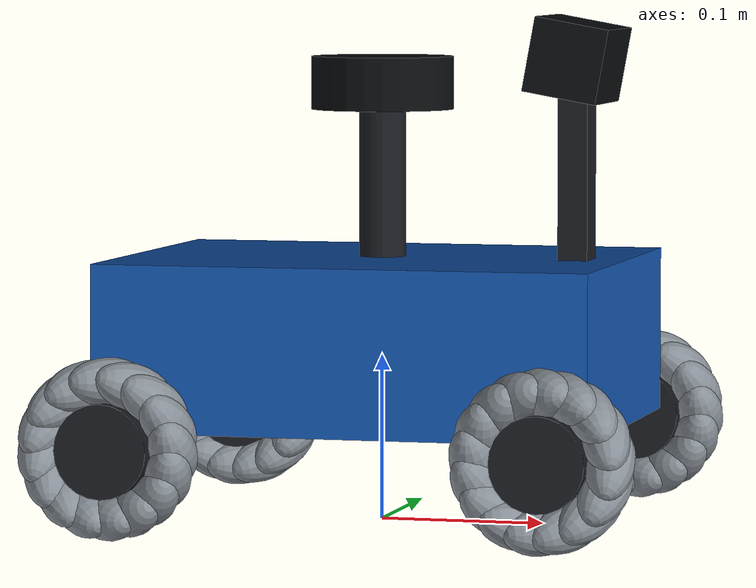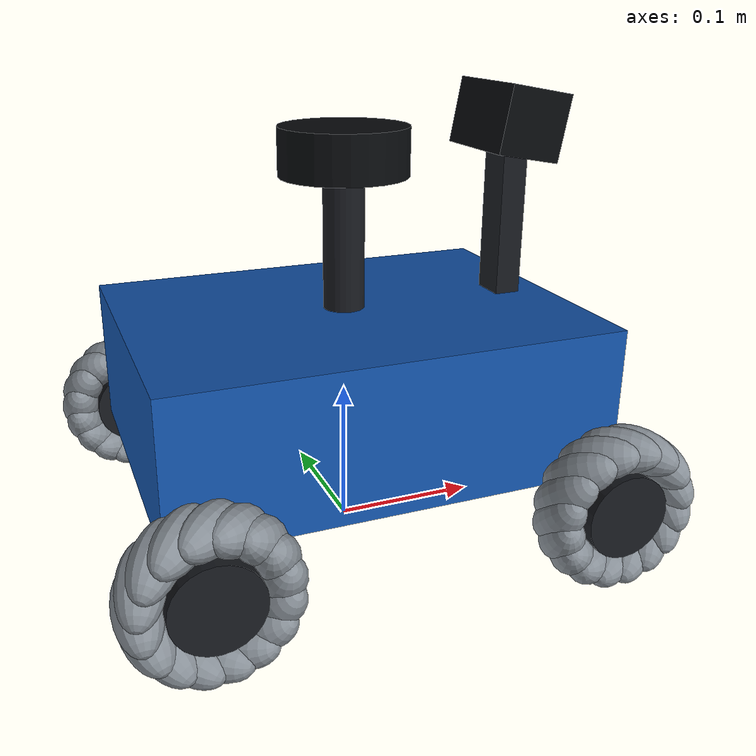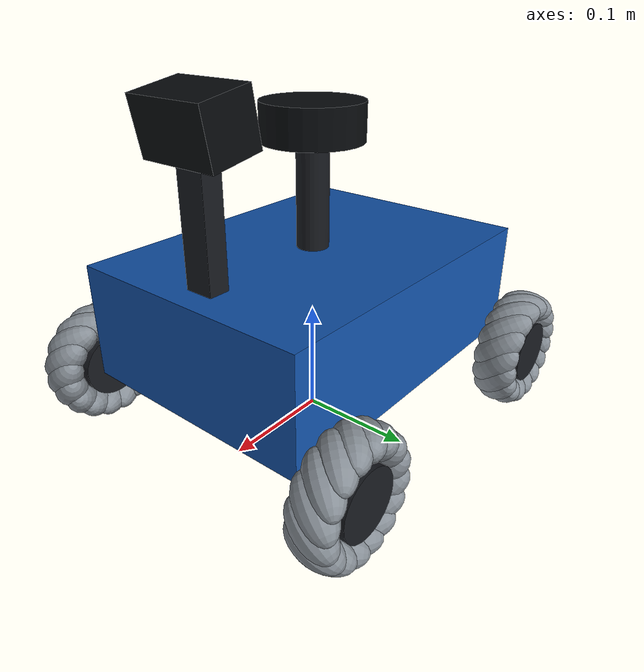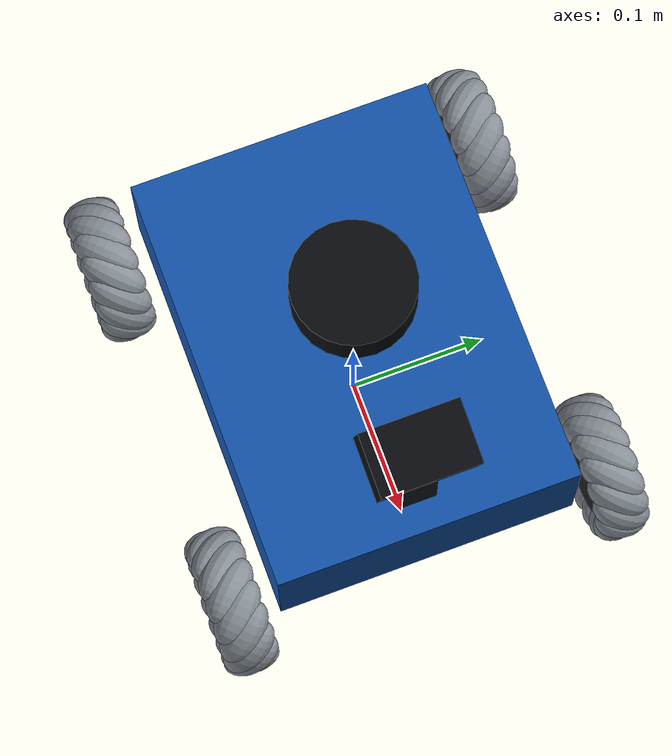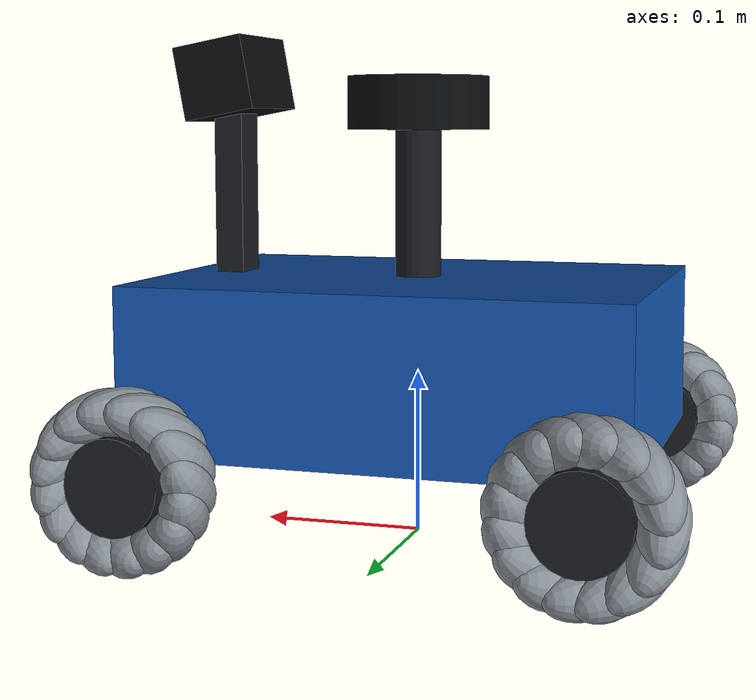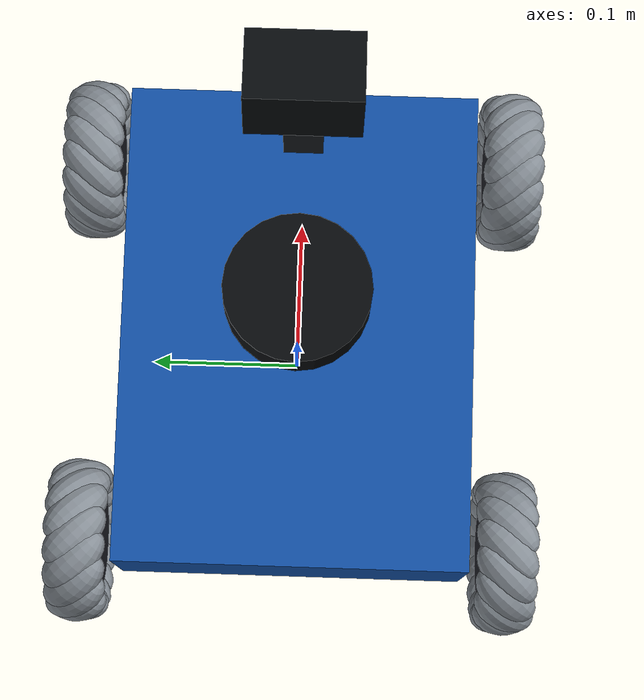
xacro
<?xml version="1.0"?>
<robot name="community_mecanum" xmlns:xacro="http://www.ros.org/wiki/xacro">
  <!-- Known spawn pose seeds the odometry frame once; subsequent motion is encoder-only. -->
  <xacro:arg name="odom_initial_x" default="0"/>
  <xacro:arg name="odom_initial_y" default="0"/>
  <xacro:arg name="odom_initial_yaw" default="0"/>
  <xacro:arg name="camera_hfov" default="1.745329"/>
  <xacro:arg name="motor_kp" default="0.04"/>
  <xacro:arg name="motor_ki" default="0.08"/>
  <!-- Geometry is intentionally small enough for the schematic 0.60 m lanes. -->
  <xacro:property name="wheel_radius" value="0.054"/>
  <xacro:property name="wheel_width" value="0.040"/>
  <xacro:property name="wheel_x" value="0.130"/>
  <xacro:property name="wheel_y" value="0.140"/>
  <xacro:property name="base_z" value="0.110"/>

  <material name="body_blue"><color rgba="0.07 0.32 0.66 1"/></material>
  <material name="dark"><color rgba="0.09 0.10 0.12 1"/></material>
  <material name="roller_gray"><color rgba="0.53 0.56 0.59 1"/></material>
  <material name="sensor_black"><color rgba="0.03 0.04 0.05 1"/></material>

  <link name="base_footprint"/>
  <joint name="base_fixed_joint" type="fixed">
    <parent link="base_footprint"/><child link="base_link"/>
    <origin xyz="0 0 ${base_z}" rpy="0 0 0"/>
  </joint>
  <link name="base_link">
    <visual><geometry><box size="0.30 0.22 0.10"/></geometry><material name="body_blue"/></visual>
    <collision><geometry><box size="0.30 0.22 0.10"/></geometry></collision>
    <inertial>
      <mass value="4.0"/>
      <inertia ixx="0.0197" ixy="0" ixz="0" iyy="0.0333" iyz="0" izz="0.0461"/>
    </inertial>
  </link>
  <link name="sensor_support">
    <visual><origin xyz="0 0 0.085"/><geometry><cylinder radius="0.014" length="0.17"/></geometry><material name="dark"/></visual>
    <visual><origin xyz="0.12 0 0.11"/><geometry><box size="0.018 0.025 0.16"/></geometry><material name="dark"/></visual>
  </link>
  <joint name="sensor_support_joint" type="fixed"><parent link="base_link"/><child link="sensor_support"/></joint>
  <gazebo reference="base_link"><material>Gazebo/Blue</material></gazebo>

  <!-- Each roller is a passive revolute body. Only the hub receives motor torque. -->
  <xacro:macro name="roller" params="wheel idx handedness">
    <xacro:property name="theta" value="${idx*math.pi/8}"/>
    <xacro:property name="ax" value="${-math.sin(theta)/math.sqrt(2)}"/>
    <xacro:property name="ay" value="${handedness/math.sqrt(2)}"/>
    <xacro:property name="az" value="${math.cos(theta)/math.sqrt(2)}"/>
    <link name="${wheel}_roller_${idx}">
      <visual><geometry><mesh filename="package://smart_community_sim/meshes/mecanum_roller.dae"/></geometry><material name="roller_gray"/></visual>
      <collision name="middle"><geometry><sphere radius="0.014"/></geometry></collision>
      <collision name="end_a"><origin xyz="0 0 0.012"/><geometry><sphere radius="0.010"/></geometry></collision>
      <collision name="end_b"><origin xyz="0 0 -0.012"/><geometry><sphere radius="0.010"/></geometry></collision>
      <inertial><mass value="0.018"/><inertia ixx="0.000003" ixy="0" ixz="0" iyy="0.000003" iyz="0" izz="0.0000015"/></inertial>
    </link>
    <joint name="${wheel}_roller_${idx}_joint" type="continuous">
      <parent link="${wheel}_wheel_link"/><child link="${wheel}_roller_${idx}"/>
      <origin xyz="${0.040*math.cos(theta)} 0 ${0.040*math.sin(theta)}"
              rpy="0 ${math.acos(az)} ${math.atan2(ay,ax)}"/>
      <axis xyz="0 0 1"/><dynamics damping="0.00002" friction="0"/>
    </joint>
    <gazebo reference="${wheel}_roller_${idx}">
      <material>Gazebo/DarkGrey</material><mu1>1.0</mu1><mu2>1.0</mu2>
      <kp>100000</kp><kd>10</kd><minDepth>0.0001</minDepth><maxVel>0.1</maxVel>
      <selfCollide>false</selfCollide><maxContacts>4</maxContacts>
    </gazebo>
  </xacro:macro>
  <xacro:macro name="mecanum_wheel" params="name x y handedness">
    <link name="${name}_wheel_link">
      <visual><origin rpy="${math.pi/2} 0 0"/><geometry><cylinder radius="0.028" length="0.032"/></geometry><material name="dark"/></visual>
      <collision><origin rpy="${math.pi/2} 0 0"/><geometry><cylinder radius="0.028" length="0.032"/></geometry></collision>
      <inertial><mass value="0.10"/><inertia ixx="0.000035" ixy="0" ixz="0" iyy="0.0000392" iyz="0" izz="0.000035"/></inertial>
    </link>
    <joint name="${name}_wheel_joint" type="continuous">
      <parent link="base_link"/><child link="${name}_wheel_link"/>
      <origin xyz="${x} ${y} ${wheel_radius-base_z}"/><axis xyz="0 1 0"/>
      <dynamics damping="0.0001" friction="0"/>
    </joint>
    <gazebo reference="${name}_wheel_link"><material>Gazebo/Black</material><selfCollide>false</selfCollide></gazebo>
    <xacro:roller wheel="${name}" idx="0" handedness="${handedness}"/>
    <xacro:roller wheel="${name}" idx="1" handedness="${handedness}"/>
    <xacro:roller wheel="${name}" idx="2" handedness="${handedness}"/>
    <xacro:roller wheel="${name}" idx="3" handedness="${handedness}"/>
    <xacro:roller wheel="${name}" idx="4" handedness="${handedness}"/>
    <xacro:roller wheel="${name}" idx="5" handedness="${handedness}"/>
    <xacro:roller wheel="${name}" idx="6" handedness="${handedness}"/>
    <xacro:roller wheel="${name}" idx="7" handedness="${handedness}"/>
    <xacro:roller wheel="${name}" idx="8" handedness="${handedness}"/>
    <xacro:roller wheel="${name}" idx="9" handedness="${handedness}"/>
    <xacro:roller wheel="${name}" idx="10" handedness="${handedness}"/>
    <xacro:roller wheel="${name}" idx="11" handedness="${handedness}"/>
    <xacro:roller wheel="${name}" idx="12" handedness="${handedness}"/>
    <xacro:roller wheel="${name}" idx="13" handedness="${handedness}"/>
    <xacro:roller wheel="${name}" idx="14" handedness="${handedness}"/>
    <xacro:roller wheel="${name}" idx="15" handedness="${handedness}"/>
  </xacro:macro>
  <!-- At bottom contact FL/RR roller axles slope -45 degrees, FR/RL +45 degrees. -->
  <xacro:mecanum_wheel name="front_left" x="${wheel_x}" y="${wheel_y}" handedness="-1"/>
  <xacro:mecanum_wheel name="front_right" x="${wheel_x}" y="${-wheel_y}" handedness="1"/>
  <xacro:mecanum_wheel name="rear_left" x="${-wheel_x}" y="${wheel_y}" handedness="1"/>
  <xacro:mecanum_wheel name="rear_right" x="${-wheel_x}" y="${-wheel_y}" handedness="-1"/>

  <link name="laser_link">
    <visual><geometry><cylinder radius="0.043" length="0.032"/></geometry><material name="sensor_black"/></visual>
    <collision><geometry><cylinder radius="0.043" length="0.032"/></geometry></collision>
    <inertial><mass value="0.15"/><inertia ixx="0.00009" ixy="0" ixz="0" iyy="0.00009" iyz="0" izz="0.00014"/></inertial>
  </link>
  <joint name="laser_joint" type="fixed">
    <parent link="base_link"/><child link="laser_link"/>
    <origin xyz="0 0 0.155" rpy="0 0 0"/>
  </joint>
  <gazebo reference="laser_link">
    <material>Gazebo/Black</material>
    <sensor name="laser" type="ray">
      <always_on>true</always_on><update_rate>12</update_rate><visualize>false</visualize>
      <ray>
        <scan><horizontal><samples>720</samples><resolution>1</resolution>
          <min_angle>-${math.pi}</min_angle><max_angle>${math.pi}</max_angle>
        </horizontal></scan>
        <range><min>0.08</min><max>8.0</max><resolution>0.01</resolution></range>
      </ray>
      <plugin name="laser_ros" filename="libgazebo_ros_laser.so">
        <topicName>scan</topicName><frameName>laser_link</frameName>
      </plugin>
    </sensor>
  </gazebo>

  <link name="camera_link">
    <collision><geometry><box size="0.045 0.070 0.045"/></geometry></collision>
    <visual><geometry><box size="0.045 0.070 0.045"/></geometry><material name="sensor_black"/></visual>
    <inertial><mass value="0.08"/><inertia ixx="0.00005" ixy="0" ixz="0" iyy="0.00004" iyz="0" izz="0.00006"/></inertial>
  </link>
  <joint name="camera_joint" type="fixed">
    <parent link="base_link"/><child link="camera_link"/>
    <origin xyz="0.12 0 0.170" rpy="0 0.18 0"/>
  </joint>
  <gazebo reference="camera_link">
    <material>Gazebo/Black</material>
    <sensor name="front_camera" type="camera">
      <always_on>true</always_on><update_rate>20</update_rate>
      <camera><horizontal_fov>$(arg camera_hfov)</horizontal_fov>
        <image><width>1280</width><height>960</height><format>R8G8B8</format></image>
        <clip><near>0.05</near><far>8.0</far></clip>
      </camera>
      <plugin name="camera_ros" filename="libgazebo_ros_camera.so">
        <cameraName>front_camera</cameraName>
        <imageTopicName>image_raw</imageTopicName>
        <cameraInfoTopicName>camera_info</cameraInfoTopicName>
        <frameName>camera_optical_frame</frameName>
      </plugin>
    </sensor>
  </gazebo>
  <link name="camera_optical_frame"/>
  <joint name="camera_optical_joint" type="fixed">
    <parent link="camera_link"/><child link="camera_optical_frame"/>
    <origin xyz="0 0 0" rpy="${-math.pi/2} 0 ${-math.pi/2}"/>
  </joint>

  <!-- Four-wheel inverse kinematics, odometry and TF are handled by this plugin. -->
  <gazebo>
    <plugin name="mecanum_drive" filename="libcommunity_mecanum_drive.so">
      <wheelRadius>${wheel_radius}</wheelRadius>
      <wheelX>${wheel_x}</wheelX>
      <wheelY>${wheel_y}</wheelY>
      <commandTimeout>0.5</commandTimeout>
      <initialX>$(arg odom_initial_x)</initialX>
      <initialY>$(arg odom_initial_y)</initialY>
      <initialYaw>$(arg odom_initial_yaw)</initialYaw>
      <motorKp>$(arg motor_kp)</motorKp><motorKi>$(arg motor_ki)</motorKi><motorVelocityFilter>0.01</motorVelocityFilter>
      <maxTorque>0.45</maxTorque><maxWheelSpeed>8</maxWheelSpeed>
    </plugin>
  </gazebo>
</robot>
